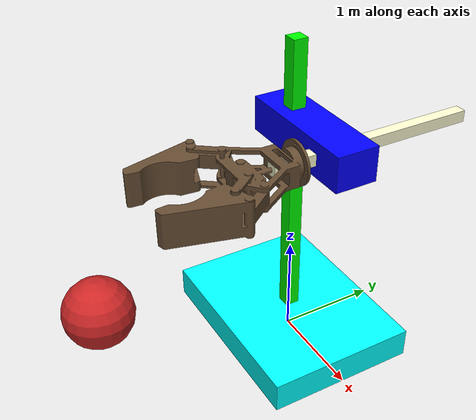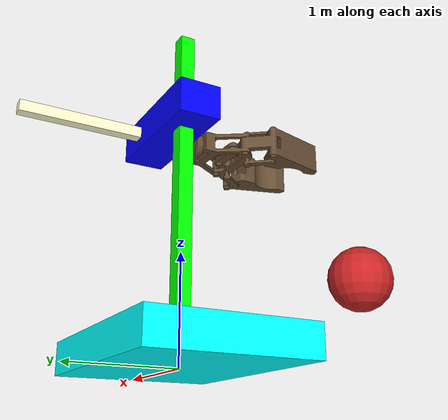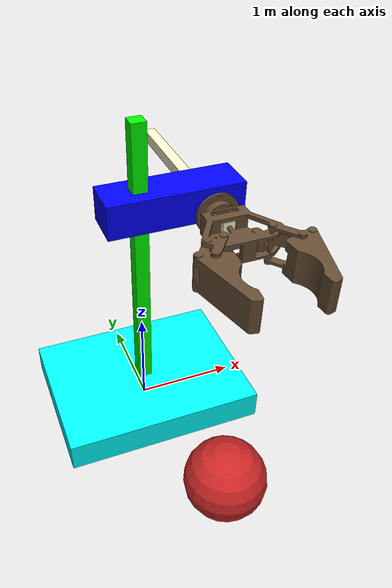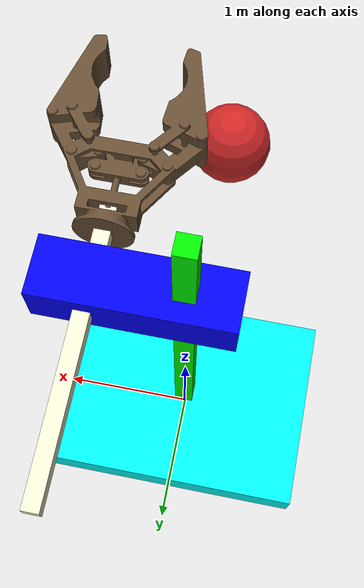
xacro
<?xml version="1.0"?>
<robot xmlns:xacro="http://www.ros.org/wiki/xacro" name="NAME_UNIT" >
	<xacro:include filename= "gazebo.xacro"/>
	<xacro:include filename="transmission.xacro"/>
	<xacro:include filename="myrobot.urdf"/>

	<gazebo>
		<plugin name="gazebo_ros_control" filename="libgazebo_ros_control.so">
		<robotNamespace>/MYROBOT</robotNamespace>
		</plugin>
	</gazebo>

	<xacro:gazebo link_name="ball" mu1="0.2" mu2="0.2" kp="0" kd="0" COLOR="Red"/>
	<xacro:gazebo link_name="base" mu1="0.2" mu2="0.2" kp="0" kd="0" COLOR="Yellow"/>
	<xacro:gazebo link_name="vertical_axis" mu1="0.2" mu2="0.2" kp="0" kd="0" COLOR="Green"/>
	<xacro:gazebo link_name="block" mu1="0.2" mu2="0.2" kp="0" kd="0" COLOR="Blue"/>
	<xacro:gazebo link_name="horizontal_axis" mu1="0.2" mu2="0.2" kp="0" kd="0" COLOR="Yellow"/>
	<xacro:gazebo link_name="gripper" mu1="0.2" mu2="0.2" kp="0" kd="0" COLOR="Brown"/>

	<xacro:transmission joint_name="vertical_axis_movement" md="1"/>
	<xacro:transmission joint_name="vertical_block_movement" md="1"/>
	<xacro:transmission joint_name="horizontal_axis_movement" md="1"/>

	<gazebo>
		<plugin name="joint_state_publisher" filename="libgazebo_ros_joint_state_publisher.so">
			<robotNamespace>/MYROBOT</robotNamespace>
			<updateRate>10.0</updateRate>
			<alwaysOn>true</alwaysOn>
		</plugin>
	</gazebo>
</robot>

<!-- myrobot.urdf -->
<robot name="MYROBOT">
<link name="world">
</link>
<link name="ball">
<inertial>
<mass value="1.0" />
<origin xyz="0 0 0" />
<inertia  ixx="1.0" ixy="0.0"  ixz="0.0"  iyy="1.0"  iyz="0.0"  izz="1.0" />
</inertial>
<visual>
<origin xyz="0 0 0" rpy="0 0 0" />
<geometry>
<sphere radius="0.33"/>
</geometry>
</visual>
</link>
<link name="base">
<visual>
<origin xyz="0 0 0" rpy="0 0 0"/>
<geometry>
<box size="2 1.5 0.3"/>
</geometry>
<material name="cyan">
<color rgba="0 1 1 1"/>
</material>
</visual>
<inertial>
<origin xyz="0 0 0" rpy="0 0 0" />
<mass value ="10"/>
<inertia ixx="100" ixy="0" ixz="0" iyy="100" iyz="0" izz="100"/>
</inertial>
</link>
<link name="vertical_axis">
<visual>
<origin xyz="0 0 0" rpy="0 0 0" />
<geometry>
<box size="0.14 0.14 3"/>
</geometry>
<material name="green">
<color rgba="0 1 0 1"/>
</material>
</visual>
<inertial>
<origin xyz="0 0 0" rpy="0 0 0"/>
<mass value ="5"/>
<inertia ixx="100" ixy="0" ixz="0" iyy="100" iyz="0" izz="100"/>
</inertial>
</link>
<link name="block">
<visual>
<origin xyz="0 0 0" rpy="0 0 0" />
<geometry>
<box size="1.3 0.4 0.33"/>
</geometry>
<material name="blue">
<color rgba="0 0 1 1"/>
</material>
</visual>
<inertial>
<origin xyz="0 0 0" rpy="0 0 0"/>
<mass value ="2"/>
<inertia ixx="100" ixy="0" ixz="0" iyy="100" iyz="0" izz="100"/>
</inertial>
</link>
<link name="horizontal_axis">
<visual>
<origin xyz="0 0 0" rpy="1.5708 1.5708 0" />
<geometry>
<box size="0.11 0.11 2"/>
</geometry>
<material name="yellow">
<color rgba="1 0.99 0.82 1"/>
</material>
</visual>
<inertial>
<origin xyz="0 0 0" rpy="0 0 0"/>
<mass value ="2"/>
<inertia ixx="100" ixy="0" ixz="0" iyy="100" iyz="0" izz="100"/>
</inertial>
</link>
<link name="gripper">
<visual>
<origin xyz="2.15 0 0.35" rpy="0 0 0"/>
<geometry>
<mesh filename="package://myrobot_description/meshes/gripper.STL" scale = "0.005 0.005 0.005"/>
</geometry>
<material name="random">
<color rgba="0.4 0.3 0.2 1"/>
</material>
</visual>
<inertial>
<origin xyz="0 0 0" rpy="0 0 0"/>
<mass value ="1"/>
<inertia ixx="100" ixy="0" ixz="0" iyy="100" iyz="0" izz="100"/>
</inertial>
</link>
<joint name="immovable_connection" type="fixed">
<parent link="world"/>
<child link="base"/>
<origin xyz="0 0 0.15" rpy="0 0 0" />
<axis xyz="0 0 0"/>
<limit lower="0" upper="0" effort="0" velocity="0"/>
</joint>
<joint name="vertical_axis_movement" type="prismatic">
<parent link="base"/>
<child link="vertical_axis"/>
<origin xyz="0 0 1.5" rpy="0 0 0" />
<axis xyz="1 0 0"/>
<limit lower="-0.88" upper="0.88" effort="1000" velocity="0.5"/>
</joint>
<joint name="vertical_block_movement" type="prismatic">
<parent link="vertical_axis"/>
<child link="block"/>
<origin xyz="0.3 0 0.7" rpy="0 0 0" />
<axis xyz="0 0 1"/>
<limit lower="-1.635" upper="0.735" effort="1000" velocity="0.5"/>
</joint>
<joint name="horizontal_axis_movement" type="prismatic">
<parent link="block"/>
<child link="horizontal_axis"/>
<origin xyz="0.3 0.4 0" rpy="0 0 0" />
<axis xyz="0 1 0"/>
<limit lower="-1" upper="0" effort="1000" velocity="0.5"/>
</joint>
<joint name="gripper_connection" type="fixed">
<parent link="horizontal_axis"/>
<child link="gripper"/>
<origin xyz="-2.15 -0.4 0" rpy="1.5708 0 0" />
<axis xyz="0 0 0"/>
<limit lower="0" upper="0" effort="0" velocity="0"/>
</joint>
<joint name="ball_connection" type="fixed">
<parent link="world" />
<child link="ball" />
<origin xyz="0 -2 1" rpy="0 0 0" />
<axis xyz="0 0 0" />
<limit lower="0" upper="0" effort="0" velocity="0" />
</joint>
</robot>
